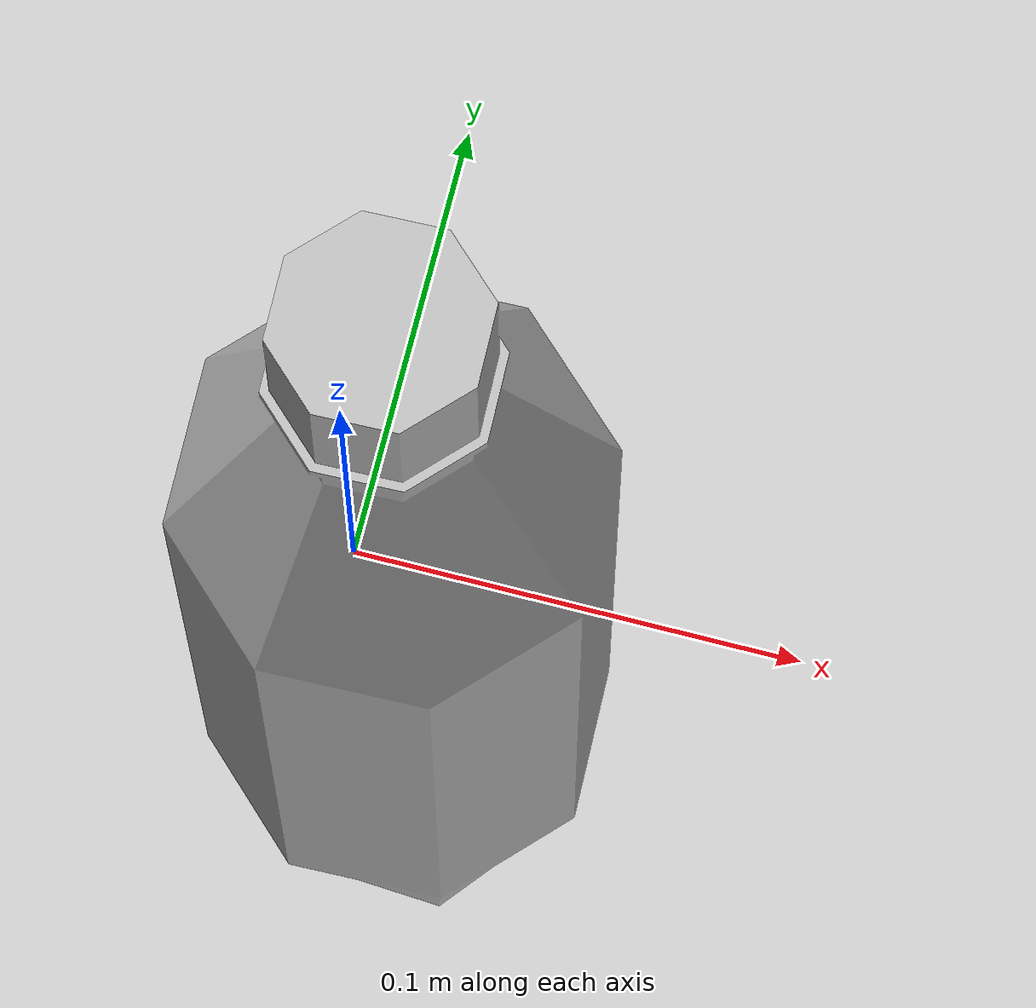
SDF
<?xml version="1.0" ?>
<sdf version="1.6">
  <model name="dirtyBottle">
    <static>false</static>
    <link name="link">
      <inertial>
        <mass>0.09</mass>
        <inertia>
          <ixx>0.000021715</ixx>
          <ixy>0</ixy>
          <ixz>0</ixz>
          <iyy>0.000021715</iyy>
          <iyz>0</iyz>
          <izz>0.00000178</izz>
        </inertia>
        <pose>0 0 0.0 0 0 0</pose>
      </inertial>
      <collision name="collision">
        <pose>0 0 -0.15 0 0 0</pose>
        <geometry>
          <mesh>
            <scale>1.0 1.0 1.0</scale>
            <uri>model://dirtyBottle/meshes/dirty_Plastic_Bottles2.stl</uri>
          </mesh>
        </geometry>
        <surface>
          <bounce>
            <restitution_coefficient>0</restitution_coefficient>
            <threshold>0.01</threshold>
          </bounce>
          <friction>
            <ode>
              <mu>1.2</mu>
              <mu2>1.2</mu2>
            </ode>
          </friction>
        </surface>
      </collision>
      <visual name="visual">
        <pose>0 0 -0.15 0 0 0</pose>
        <geometry>
           <mesh>
            <scale>1.0 1.0 1.0</scale>
            <uri>model://dirtyBottle/meshes/dirty_Plastic_Bottles2.dae</uri>
          </mesh>
        </geometry>
      </visual>
    </link>
  </model>
</sdf>
